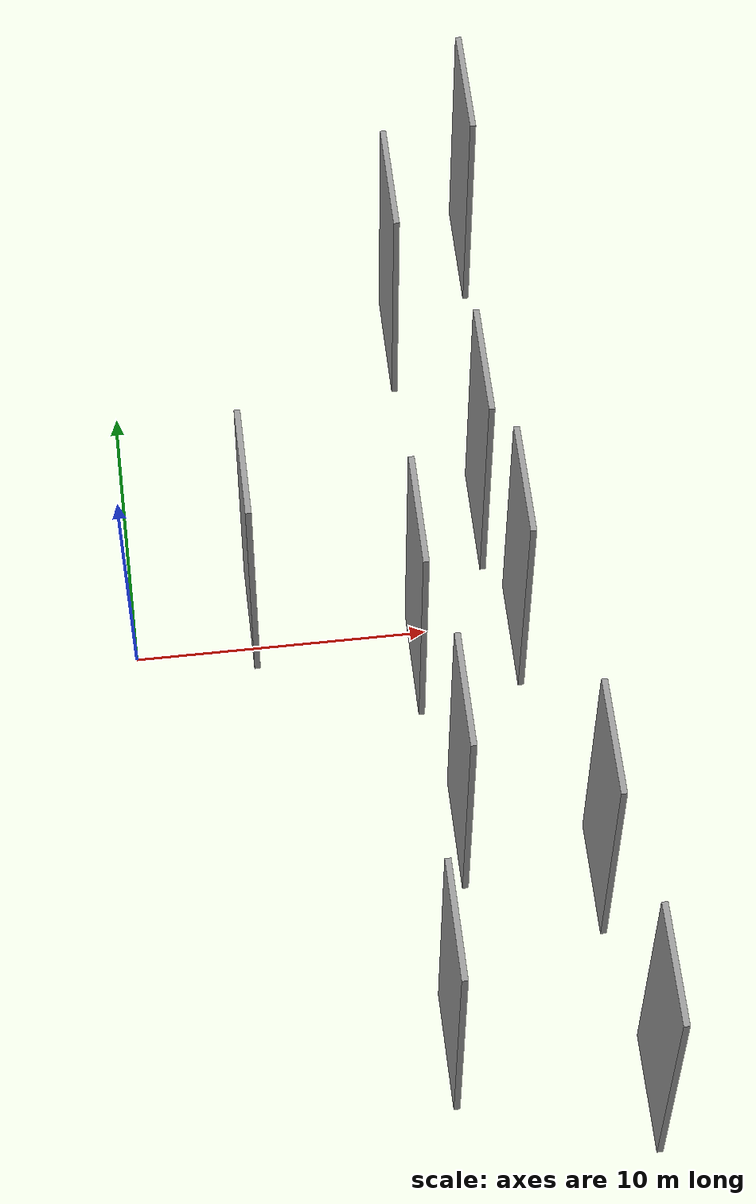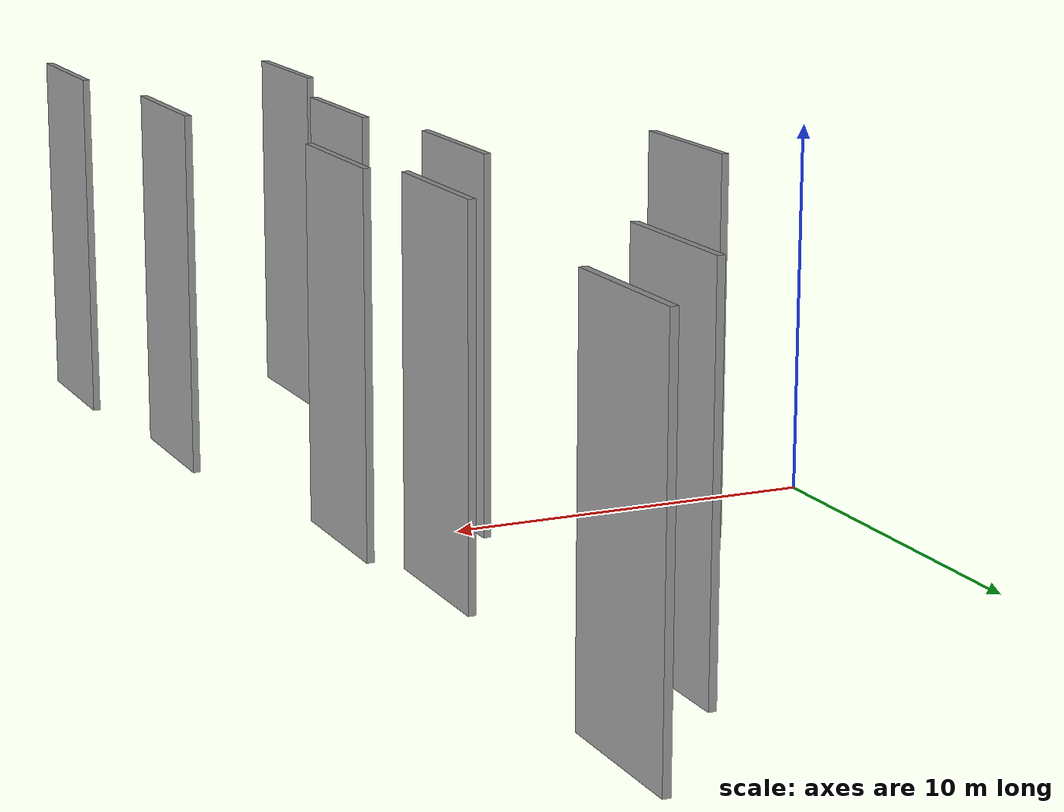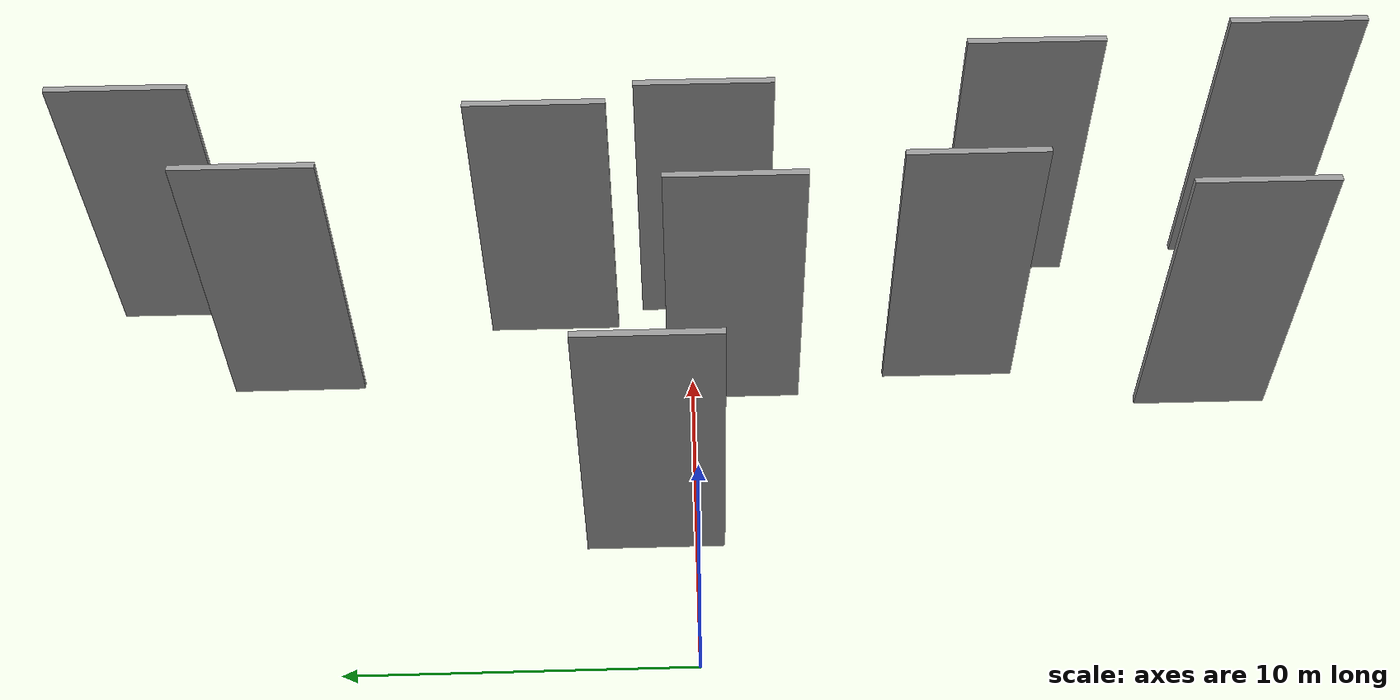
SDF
<sdf version="1.6">
 <world name="default">
  <scene>
   <sky><clouds><speed>12</speed></clouds></sky>
   <ambient>0.4 0.4 0.4 1</ambient>
   <background>0.7 0.7 0.7 1</background>
   <shadows>1</shadows>
  </scene>
  <gravity>0 0 -9.8066</gravity>
  <magnetic_field>6e-06 2.3e-05 -4.2e-05</magnetic_field>
  <physics default="0" name="default_physics" type="ode">
   <ode>
    <solver>
     <type>quick</type>
     <iters>10</iters>
     <sor>1.0</sor>
     <use_dynamic_moi_rescaling>0</use_dynamic_moi_rescaling>
    </solver>
    <constraints>
     <cfm>0</cfm>
     <erp>0.2</erp>
     <contact_max_correcting_vel>100</contact_max_correcting_vel>
     <contact_surface_layer>0.001</contact_surface_layer>
    </constraints>
   </ode>
   <max_step_size>0.004</max_step_size>
   <real_time_factor>1</real_time_factor>
   <real_time_update_rate>250</real_time_update_rate>
  </physics>
  <light name="sun" type="directional">
   <pose>0 0 10 0 0 0</pose>
   <diffuse>0.8 0.8 0.8 1</diffuse>
   <specular>0.2 0.2 0.2 1</specular>
   <attenuation>
    <range>1000</range>
    <constant>0.9</constant>
    <linear>0.01</linear>
    <quadratic>0.001</quadratic>
   </attenuation>
   <direction>-0.5 0.1 -0.9</direction>
  </light>
  <model name="grey_wall_1">
   <static>1</static>
   <pose>13.0217 -0.4542 0.0 0.000000 0.000000 1.570796</pose>
   <link name="link">
    <pose>0 0 5.00 0 0 0</pose>
    <collision name="collision"><geometry><box><size>4.00 0.2 10.00</size></box></geometry></collision>
    <visual name="visual">
     <cast_shadows>0</cast_shadows>
     <geometry><box><size>4.00 0.2 10.00</size></box></geometry>
     <material>
      <script>
       <uri>model://grey_wall/materials/scripts</uri>
       <uri>model://grey_wall/materials/textures</uri>
       <name>vrc/grey_wall</name>
      </script>
     </material>
    </visual>
   </link>
  </model>
  <model name="grey_wall_2">
   <static>1</static>
   <pose>4.0930 1.2026 0.0 0.000000 0.000000 1.570796</pose>
   <link name="link">
    <pose>0 0 5.00 0 0 0</pose>
    <collision name="collision"><geometry><box><size>4.00 0.2 10.00</size></box></geometry></collision>
    <visual name="visual">
     <cast_shadows>0</cast_shadows>
     <geometry><box><size>4.00 0.2 10.00</size></box></geometry>
     <material>
      <script>
       <uri>model://grey_wall/materials/scripts</uri>
       <uri>model://grey_wall/materials/textures</uri>
       <name>vrc/grey_wall</name>
      </script>
     </material>
    </visual>
   </link>
  </model>
  <model name="grey_wall_3">
   <static>1</static>
   <pose>12.3247 4.3085 0.0 0.000000 0.000000 1.570796</pose>
   <link name="link">
    <pose>0 0 5.00 0 0 0</pose>
    <collision name="collision"><geometry><box><size>4.00 0.2 10.00</size></box></geometry></collision>
    <visual name="visual">
     <cast_shadows>0</cast_shadows>
     <geometry><box><size>4.00 0.2 10.00</size></box></geometry>
     <material>
      <script>
       <uri>model://grey_wall/materials/scripts</uri>
       <uri>model://grey_wall/materials/textures</uri>
       <name>vrc/grey_wall</name>
      </script>
     </material>
    </visual>
   </link>
  </model>
  <model name="grey_wall_4">
   <static>1</static>
   <pose>8.8737 -15.5681 0.0 0.000000 0.000000 1.570796</pose>
   <link name="link">
    <pose>0 0 5.00 0 0 0</pose>
    <collision name="collision"><geometry><box><size>4.00 0.2 10.00</size></box></geometry></collision>
    <visual name="visual">
     <cast_shadows>0</cast_shadows>
     <geometry><box><size>4.00 0.2 10.00</size></box></geometry>
     <material>
      <script>
       <uri>model://grey_wall/materials/scripts</uri>
       <uri>model://grey_wall/materials/textures</uri>
       <name>vrc/grey_wall</name>
      </script>
     </material>
    </visual>
   </link>
  </model>
  <model name="grey_wall_5">
   <static>1</static>
   <pose>14.4326 -10.0278 0.0 0.000000 0.000000 1.570796</pose>
   <link name="link">
    <pose>0 0 5.00 0 0 0</pose>
    <collision name="collision"><geometry><box><size>4.00 0.2 10.00</size></box></geometry></collision>
    <visual name="visual">
     <cast_shadows>0</cast_shadows>
     <geometry><box><size>4.00 0.2 10.00</size></box></geometry>
     <material>
      <script>
       <uri>model://grey_wall/materials/scripts</uri>
       <uri>model://grey_wall/materials/textures</uri>
       <name>vrc/grey_wall</name>
      </script>
     </material>
    </visual>
   </link>
  </model>
  <model name="grey_wall_6">
   <static>1</static>
   <pose>10.1285 12.1653 0.0 0.000000 0.000000 1.570796</pose>
   <link name="link">
    <pose>0 0 5.00 0 0 0</pose>
    <collision name="collision"><geometry><box><size>4.00 0.2 10.00</size></box></geometry></collision>
    <visual name="visual">
     <cast_shadows>0</cast_shadows>
     <geometry><box><size>4.00 0.2 10.00</size></box></geometry>
     <material>
      <script>
       <uri>model://grey_wall/materials/scripts</uri>
       <uri>model://grey_wall/materials/textures</uri>
       <name>vrc/grey_wall</name>
      </script>
     </material>
    </visual>
   </link>
  </model>
  <model name="grey_wall_7">
   <static>1</static>
   <pose>10.1376 -7.8920 0.0 0.000000 0.000000 1.570796</pose>
   <link name="link">
    <pose>0 0 5.00 0 0 0</pose>
    <collision name="collision"><geometry><box><size>4.00 0.2 10.00</size></box></geometry></collision>
    <visual name="visual">
     <cast_shadows>0</cast_shadows>
     <geometry><box><size>4.00 0.2 10.00</size></box></geometry>
     <material>
      <script>
       <uri>model://grey_wall/materials/scripts</uri>
       <uri>model://grey_wall/materials/textures</uri>
       <name>vrc/grey_wall</name>
      </script>
     </material>
    </visual>
   </link>
  </model>
  <model name="grey_wall_8">
   <static>1</static>
   <pose>15.0670 -17.7042 0.0 0.000000 0.000000 1.570796</pose>
   <link name="link">
    <pose>0 0 5.00 0 0 0</pose>
    <collision name="collision"><geometry><box><size>4.00 0.2 10.00</size></box></geometry></collision>
    <visual name="visual">
     <cast_shadows>0</cast_shadows>
     <geometry><box><size>4.00 0.2 10.00</size></box></geometry>
     <material>
      <script>
       <uri>model://grey_wall/materials/scripts</uri>
       <uri>model://grey_wall/materials/textures</uri>
       <name>vrc/grey_wall</name>
      </script>
     </material>
    </visual>
   </link>
  </model>
  <model name="grey_wall_9">
   <static>1</static>
   <pose>13.2306 16.0352 0.0 0.000000 0.000000 1.570796</pose>
   <link name="link">
    <pose>0 0 5.00 0 0 0</pose>
    <collision name="collision"><geometry><box><size>4.00 0.2 10.00</size></box></geometry></collision>
    <visual name="visual">
     <cast_shadows>0</cast_shadows>
     <geometry><box><size>4.00 0.2 10.00</size></box></geometry>
     <material>
      <script>
       <uri>model://grey_wall/materials/scripts</uri>
       <uri>model://grey_wall/materials/textures</uri>
       <name>vrc/grey_wall</name>
      </script>
     </material>
    </visual>
   </link>
  </model>
  <model name="grey_wall_10">
   <static>1</static>
   <pose>9.4966 -1.2254 0.0 0.000000 0.000000 1.570796</pose>
   <link name="link">
    <pose>0 0 5.00 0 0 0</pose>
    <collision name="collision"><geometry><box><size>4.00 0.2 10.00</size></box></geometry></collision>
    <visual name="visual">
     <cast_shadows>0</cast_shadows>
     <geometry><box><size>4.00 0.2 10.00</size></box></geometry>
     <material>
      <script>
       <uri>model://grey_wall/materials/scripts</uri>
       <uri>model://grey_wall/materials/textures</uri>
       <name>vrc/grey_wall</name>
      </script>
     </material>
    </visual>
   </link>
  </model>
 </world>
</sdf>
